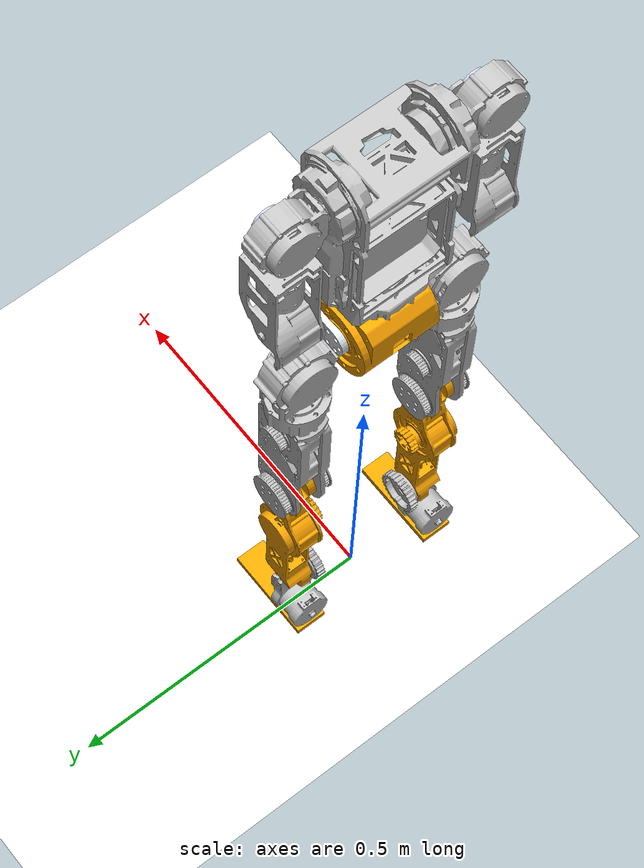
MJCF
<mujoco model="E1_v2">
  <compiler angle="radian" meshdir="../meshes/" autolimits="true"/>

  <default>
    <default class="E1">

        <!-- visual -->
        <!-- contype="0" 和 conaffinity="0" 表示该几何体不会与任何物体碰撞（包括地面） -->
        <default class="visual">
            <geom group="2" type="mesh" contype="0" conaffinity="0" rgba="0.3 0.3 0.3 1"/>
        </default>

        <default class="collision">
            <geom group="3" mass="0" density="0" rgba="0.7 0.7 0.7 1"/>
        </default>

    </default>
  </default>

  <asset>
    <texture type="skybox" builtin="gradient" rgb1="1 1 1" rgb2="1 1 1" width="800" height="800"/>
    <texture type="2d" name="groundplane" builtin="checker" mark="edge" rgb1="1 1 1" rgb2="1 1 1" markrgb="0 0 0" width="300" height="300"/>
    <material name="groundplane" texture="groundplane" texuniform="true" texrepeat="5 5" reflectance="0"/>
    <texture type="skybox" builtin="gradient" rgb1=".4 .5 .6" rgb2="0 0 0" width="100" height="100"/>
    <texture builtin="flat" height="1278" mark="cross" markrgb="1 1 1" name="texgeom" random="0.01" rgb1="0.8 0.6 0.4" rgb2="0.8 0.6 0.4" type="cube" width="127"/>
    <texture name="texplane" builtin="checker" height="512" width="512" rgb1=".2 .3 .4" rgb2=".1 .15 .2" type="2d" />
    <material name="MatPlane" reflectance="0.5" shininess="0.01" specular="0.1" texrepeat="1 1" texture="texplane" texuniform="true" />
    <material name="geom" texture="texgeom" texuniform="true"/>
  </asset>
  <worldbody>
    <geom name="floor" size="0 0 0.01" type="plane" material="groundplane" contype="1" conaffinity="0" priority="1" friction="0.6" condim="3"/>
    <light diffuse=".5 .5 .5" pos="-3 -3 5" dir="3 3 -5" castshadow="true"/>
  </worldbody>

  <asset>
    <mesh name="pelvis" file="pelvis.STL"/>
    <mesh name="left_hip_pitch_link" file="left_hip_pitch_link.STL"/>
    <mesh name="left_hip_roll_link" file="left_hip_roll_link.STL"/>
    <mesh name="left_hip_yaw_link" file="left_hip_yaw_link.STL"/>
    <mesh name="left_knee_link" file="left_knee_link.STL"/>
    <mesh name="left_ankle_pitch_link" file="left_ankle_pitch_link.STL"/>
    <mesh name="right_hip_pitch_link" file="right_hip_pitch_link.STL"/>
    <mesh name="right_hip_roll_link" file="right_hip_roll_link.STL"/>
    <mesh name="right_hip_yaw_link" file="right_hip_yaw_link.STL"/>
    <mesh name="right_knee_link" file="right_knee_link.STL"/>
    <mesh name="right_ankle_pitch_link" file="right_ankle_pitch_link.STL"/>
    <mesh name="torso_link" file="torso_link.STL"/>
    <mesh name="left_shoulder_pitch_link" file="left_shoulder_pitch_link.STL"/>
    <mesh name="left_shoulder_roll_link" file="left_shoulder_roll_link.STL"/>
    <mesh name="left_shoulder_yaw_link" file="left_shoulder_yaw_link.STL"/>
    <mesh name="left_elbow_link" file="left_elbow_link.STL"/>
    <mesh name="right_shoulder_pitch_link" file="right_shoulder_pitch_link.STL"/>
    <mesh name="right_shoulder_roll_link" file="right_shoulder_roll_link.STL"/>
    <mesh name="right_shoulder_yaw_link" file="right_shoulder_yaw_link.STL"/>
    <mesh name="right_elbow_link" file="right_elbow_link.STL"/>
    <mesh name="head_link" file="head_link.STL"/>
  </asset>

  <worldbody>
    <body name="pelvis" pos="0 0 0.73">
      <freejoint name="base_free_joint"/>
      <inertial pos="0.002 0 0.07" mass="2.95" quat="0.99 0 0.11 0" diaginertia="0.009 0.008 0.007"/>
      <geom class="visual" type="mesh" contype="0" conaffinity="0" group="1" density="0" rgba="1 0.64706 0 1" mesh="pelvis"/>
      <geom class="collision" size="0.05 0.05 0.05" pos="0 0 0.07" type="box" rgba="1 0.64706 0 1"/>

      <site name="imu_sensor" size="0.01" pos="0 0 0.1"/>

      <body name="left_hip_pitch_link" pos="0 0.057 0.065">
        <inertial pos="0.020044 0.0301526 -0.00422561" quat="0.627234 0.686462 0.353637 -0.101436" mass="0.18" diaginertia="0.000177793 0.000150738 5.17688e-05"/>
        <joint name="left_hip_pitch_joint" pos="0 0 0" axis="0 1 0" range="-2.7053 2.7053" actuatorfrcrange="-60 60"/>
        <geom class="visual" type="mesh" contype="0" conaffinity="0" group="1" density="0" rgba="0.89804 0.91765 0.92941 1" mesh="left_hip_pitch_link"/>

        <body name="left_hip_roll_link" pos="0 0.065 -0.013057">
          <inertial pos="-0.00068638 -5.009e-05 -0.0357735" quat="0.999944 0.00308008 0.00965317 -0.00314352" mass="1.665" diaginertia="0.00409391 0.00387212 0.00178131"/>
          <joint name="left_hip_roll_joint" pos="0 0 0" axis="1 0 0" range="-0.5236 3.1416" actuatorfrcrange="-60 60"/>
          <geom class="visual" type="mesh" contype="0" conaffinity="0" group="1" density="0" rgba="0.75294 0.75294 0.75294 1" mesh="left_hip_roll_link"/>

          <body name="left_hip_yaw_link" pos="0 0 -0.106">
            <inertial pos="0.00068457 -7.417e-05 -0.123295" quat="0.704428 0.0135549 0.00294679 0.70964" mass="2.055" diaginertia="0.0141754 0.0138037 0.00232509"/>
            <joint name="left_hip_yaw_joint" pos="0 0 0" axis="0 0 1" range="-2.0944 2.0944" actuatorfrcrange="-36 36"/>
            <geom class="visual" type="mesh" contype="0" conaffinity="0" group="1" density="0" rgba="0.75294 0.75294 0.75294 1" mesh="left_hip_yaw_link"/>

            <body name="left_knee_link" pos="0 0 -0.228">
              <inertial pos="0.00371192 -0.00097881 -0.156429" quat="0.714688 0.000482624 -0.00500608 0.699426" mass="1.4" diaginertia="0.0153519 0.0151967 0.000832227"/>
              <joint name="left_knee_joint" pos="0 0 0" axis="0 1 0" range="0 2.2689" actuatorfrcrange="-59.3 59.3"/>
              <geom class="visual" type="mesh" contype="0" conaffinity="0" group="1" density="0" rgba="1 0.64706 0 1" mesh="left_knee_link"/>
              <geom class="collision" size="0.015 0.015 0.13" pos="0 0 -0.16" type="box" rgba="1 0.64706 0 1"/>

              <body name="left_ankle_pitch_link" pos="0 0 -0.32">
                <inertial pos="-0.0109096 -0.00574639 -0.0370866" quat="0.440961 -0.20841 0.0425785 0.871955" mass="0.785" diaginertia="0.00124346 0.00101122 0.000536033"/>
                <joint name="left_ankle_pitch_joint" pos="0 0 0" axis="0 1 0" range="-0.5236 0.5236" actuatorfrcrange="-59.3 59.3"/>
                <geom class="visual" type="mesh" contype="0" conaffinity="0" group="1" density="0" rgba="0.75294 0.75294 0.75294 1" mesh="left_ankle_pitch_link"/>

                <body name="left_ankle_roll_link" pos="0 0 -0.06">
                  <inertial pos="0.0123494 -6.993e-05 -0.0320654" quat="-0.000493007 0.69858 -0.00216045 0.715529" mass="0.275" diaginertia="0.000792703 0.000716452 0.000128165"/>
                  <joint name="left_ankle_roll_joint" pos="0 0 0" axis="1 0 0" range="-1.5708 1.5708" actuatorfrcrange="-14 14"/>
                  <geom class="collision" size="0.075 0.025 0.005" pos="0.02 0 -0.04" type="box" contype="0" conaffinity="0" group="1" density="0" rgba="1 0.64706 0 1"/>
                  <geom class="collision" size="0.075 0.025 0.005" pos="0.02 0 -0.04" type="box" rgba="1 0.64706 0 1"/>
                  <geom class="collision" size="0.005" pos="0.107 0.035 -0.045" rgba="1 0.64706 0 1"/>
                  <geom class="collision" size="0.005" pos="0.107 -0.035 -0.045" rgba="1 0.64706 0 1"/>
                  <geom class="collision" size="0.005" pos="-0.073 0.035 -0.045" rgba="1 0.64706 0 1"/>
                  <geom class="collision" size="0.005" pos="-0.073 -0.035 -0.045" rgba="1 0.64706 0 1"/>
                </body>
              </body>
            </body>
          </body>
        </body>
      </body>
      <body name="right_hip_pitch_link" pos="0 -0.057 0.065">
        <inertial pos="0.020044 -0.0301526 -0.00422561" quat="0.686462 0.627234 0.101436 -0.353637" mass="0.18" diaginertia="0.000177793 0.000150738 5.17688e-05"/>
        <joint name="right_hip_pitch_joint" pos="0 0 0" axis="0 1 0" range="-2.7053 2.7053" actuatorfrcrange="-60 60"/>
        <geom class="visual" type="mesh" contype="0" conaffinity="0" group="1" density="0" rgba="0.79216 0.81961 0.93333 1" mesh="right_hip_pitch_link"/>

        <body name="right_hip_roll_link" pos="0 -0.065 -0.013057">
          <inertial pos="-0.00068634 5.01e-05 -0.0357735" quat="0.999947 -0.00313967 0.00963826 -0.00195039" mass="1.665" diaginertia="0.00409389 0.00387212 0.00178131"/>
          <joint name="right_hip_roll_joint" pos="0 0 0" axis="1 0 0" range="-3.1416 0.5236" actuatorfrcrange="-60 60"/>
          <geom class="visual" type="mesh" contype="0" conaffinity="0" group="1" density="0" rgba="0.75294 0.75294 0.75294 1" mesh="right_hip_roll_link"/>

          <body name="right_hip_yaw_link" pos="0 0 -0.106">
            <inertial pos="0.00068454 7.42e-05 -0.123295" quat="0.70964 0.0029471 0.0135552 0.704428" mass="2.0055" diaginertia="0.0141754 0.0138037 0.00232509"/>
            <joint name="right_hip_yaw_joint" pos="0 0 0" axis="0 0 1" range="-2.0944 2.0944" actuatorfrcrange="-36 36"/>
            <geom class="visual" type="mesh" contype="0" conaffinity="0" group="1" density="0" rgba="0.75294 0.75294 0.75294 1" mesh="right_hip_yaw_link"/>

            <body name="right_knee_link" pos="0 0 -0.228">
              <inertial pos="0.00371191 0.0009788 -0.156429" quat="0.699426 -0.00500584 0.000482867 0.714687" mass="1.4" diaginertia="0.0153519 0.0151967 0.000832227"/>
              <joint name="right_knee_joint" pos="0 0 0" axis="0 1 0" range="0 2.2689" actuatorfrcrange="-59.3 59.3"/>
              <geom class="visual" type="mesh" contype="0" conaffinity="0" group="1" density="0" rgba="1 0.64706 0 1" mesh="right_knee_link"/>
              <geom class="collision" size="0.015 0.015 0.13" pos="0 0 -0.16" type="box" rgba="1 0.64706 0 1"/>

              <body name="right_ankle_pitch_link" pos="0 0 -0.32">
                <inertial pos="-0.0109096 0.00574639 -0.0370867" quat="0.871955 0.0425785 -0.20841 0.440961" mass="0.785" diaginertia="0.00124346 0.00101122 0.000536033"/>
                <joint name="right_ankle_pitch_joint" pos="0 0 0" axis="0 1 0" range="-0.5236 0.5236" actuatorfrcrange="-59.3 59.3"/>
                <geom class="visual" type="mesh" contype="0" conaffinity="0" group="1" density="0" rgba="0.75294 0.75294 0.75294 1" mesh="right_ankle_pitch_link"/>

                <body name="right_ankle_roll_link" pos="0 0 -0.06">
                  <inertial pos="0.0123494 6.993e-05 -0.0320654" quat="0.000493007 0.69858 0.00216045 0.715529" mass="0.275" diaginertia="0.000792703 0.000716452 0.000128165"/>
                  <joint name="right_ankle_roll_joint" pos="0 0 0" axis="1 0 0" range="-1.5708 1.5708" actuatorfrcrange="-14 14"/>
                  <geom class="collision" size="0.075 0.025 0.005" pos="0.02 0 -0.04" type="box" contype="0" conaffinity="0" group="1" density="0" rgba="1 0.64706 0 1"/>
                  <geom class="collision" size="0.075 0.025 0.005" pos="0.02 0 -0.04" type="box" rgba="1 0.64706 0 1"/>
                  <geom class="collision" size="0.005" pos="0.107 0.035 -0.045" rgba="1 0.64706 0 1"/>
                  <geom class="collision" size="0.005" pos="0.107 -0.035 -0.045" rgba="1 0.64706 0 1"/>
                  <geom class="collision" size="0.005" pos="-0.073 0.035 -0.045" rgba="1 0.64706 0 1"/>
                  <geom class="collision" size="0.005" pos="-0.073 -0.035 -0.045" rgba="1 0.64706 0 1"/>
                </body>
              </body>
            </body>
          </body>
        </body>
      </body>
      <body name="torso_link" pos="0 0 0.135">
        <inertial pos="0.017486 -0.000240881 0.19779" quat="0.997775 -0.00132427 0.0666636 0.000196271" mass="8.2" diaginertia="0.150933 0.137221 0.026895"/>
        <joint name="waist_yaw_joint" pos="0 0 0" axis="0 0 1" range="-1.5708 1.5708" actuatorfrcrange="-60 60"/>
        <geom class="visual" type="mesh" contype="0" conaffinity="0" group="1" density="0" rgba="0.75294 0.75294 0.75294 1" mesh="torso_link"/>
        <geom class="collision" size="0.055 0.075 0.13" pos="0 0 0.17" type="box" rgba="0.75294 0.75294 0.75294 1"/>

        <body name="left_shoulder_pitch_link" pos="0 0.0985 0.28">
          <inertial pos="-0.0029314 0.041987 -2.95e-06" quat="0.706745 0.706919 -0.0197448 -0.0196724" mass="0.7" diaginertia="0.000833414 0.00069977 0.000500536"/>
          <joint name="left_shoulder_pitch_joint" pos="0 0 0" axis="0 1 0" range="-1.0472 2.7925" actuatorfrcrange="-36 36"/>
          <geom class="visual" type="mesh" contype="0" conaffinity="0" group="1" density="0" rgba="0.75294 0.75294 0.75294 1" mesh="left_shoulder_pitch_link"/>

          <body name="left_shoulder_roll_link" pos="0 0.052 0">
            <inertial pos="0.017782 0 -0.0289723" quat="0.988463 0 -0.151464 0" mass="0.15" diaginertia="0.000100297 9.367e-05 3.51927e-05"/>
            <joint name="left_shoulder_roll_joint" pos="0 0 0" axis="1 0 0" range="-0.1745 2.9671" actuatorfrcrange="-36 36"/>
            <geom class="visual" type="mesh" contype="0" conaffinity="0" group="1" density="0" rgba="0.79216 0.81961 0.93333 1" mesh="left_shoulder_roll_link"/>

            <body name="left_shoulder_yaw_link" pos="0 0 -0.057">
              <inertial pos="-0.00319289 -9.4e-05 -0.0885952" quat="0.968587 0.0147306 -0.0241296 -0.247062" mass="1.4" diaginertia="0.00581143 0.00568508 0.00128079"/>
              <joint name="left_shoulder_yaw_joint" pos="0 0 0" axis="0 0 1" range="-2.618 2.618" actuatorfrcrange="-14 14"/>
              <geom class="visual" type="mesh" contype="0" conaffinity="0" group="1" density="0" rgba="0.75294 0.75294 0.75294 1" mesh="left_shoulder_yaw_link"/>

            </body>
          </body>
        </body>
        <body name="right_shoulder_pitch_link" pos="0 -0.0985 0.28">
          <inertial pos="-0.0029314 -0.0422941 -0.00218097" quat="0.731807 0.680677 0.0160547 0.0296457" mass="0.7" diaginertia="0.000839004 0.00070504 0.000500036"/>
          <joint name="right_shoulder_pitch_joint" pos="0 0 0" axis="0 1 0" range="-1.0472 2.7925" actuatorfrcrange="-36 36"/>
          <geom class="visual" type="mesh" contype="0" conaffinity="0" group="1" density="0" rgba="0.75294 0.75294 0.75294 1" mesh="right_shoulder_pitch_link"/>

          <body name="right_shoulder_roll_link" pos="0 -0.051904 -0.0028082">
            <inertial pos="0.017782 0 -0.0289723" quat="0.988463 0 -0.151464 0" mass="0.15" diaginertia="0.000100297 9.367e-05 3.51927e-05"/>
            <joint name="right_shoulder_roll_joint" pos="0 0 0" axis="1 0 0" range="-2.9671 0.1745" actuatorfrcrange="-36 36"/>
            <geom class="visual" type="mesh" contype="0" conaffinity="0" group="1" density="0" rgba="0.79216 0.81961 0.93333 1" mesh="right_shoulder_roll_link"/>

            <body name="right_shoulder_yaw_link" pos="0 0 -0.057">
              <inertial pos="-0.00319289 -9.4e-05 -0.0885952" quat="0.964815 -0.000336881 0.0278801 0.261448" mass="1.4" diaginertia="0.0058179 0.00567841 0.00128099"/>
              <joint name="right_shoulder_yaw_joint" pos="0 0 0" axis="0 0 1" range="-2.618 2.618" actuatorfrcrange="-14 14"/>
              <geom class="visual" type="mesh" contype="0" conaffinity="0" group="1" density="0" rgba="0.75294 0.75294 0.75294 1" mesh="right_shoulder_yaw_link"/>

            </body>
          </body>
        </body>
      </body>

    </body>
  </worldbody>

  <actuator>
    <!-- left leg -->
    <motor name="left_hip_pitch" joint="left_hip_pitch_joint"/>
    <motor name="left_hip_roll" joint="left_hip_roll_joint"/>
    <motor name="left_hip_yaw" joint="left_hip_yaw_joint"/>
    <motor name="left_knee" joint="left_knee_joint"/>
    <motor name="left_ankle_roll" joint="left_ankle_roll_joint"/>
    <motor name="left_ankle_pitch" joint="left_ankle_pitch_joint"/>

    <!-- right leg -->
    <motor name="right_hip_pitch" joint="right_hip_pitch_joint"/>
    <motor name="right_hip_roll" joint="right_hip_roll_joint"/>
    <motor name="right_hip_yaw" joint="right_hip_yaw_joint"/>
    <motor name="right_knee" joint="right_knee_joint"/>
    <motor name="right_ankle_roll" joint="right_ankle_roll_joint"/>
    <motor name="right_ankle_pitch" joint="right_ankle_pitch_joint"/>

    <!-- waist -->
    <motor name="torso" joint="waist_yaw_joint"/>

    <!-- left arm -->
    <motor name="left_shoulder_pitch" joint="left_shoulder_pitch_joint"/>
    <motor name="left_shoulder_roll" joint="left_shoulder_roll_joint"/>
    <motor name="left_shoulder_yaw" joint="left_shoulder_yaw_joint"/>

    <!-- right arm -->
    <motor name="right_shoulder_pitch" joint="right_shoulder_pitch_joint"/>
    <motor name="right_shoulder_roll" joint="right_shoulder_roll_joint"/>
    <motor name="right_shoulder_yaw" joint="right_shoulder_yaw_joint"/>

</actuator>

<sensor>
  <jointpos name="left_hip_pitch_pos" joint="left_hip_pitch_joint"/>
  <jointpos name="left_hip_roll_pos" joint="left_hip_roll_joint"/>
  <jointpos name="left_hip_yaw_pos" joint="left_hip_yaw_joint"/>
  <jointpos name="left_knee_pos" joint="left_knee_joint"/>
  <jointpos name="left_ankle_pitch_pos" joint="left_ankle_pitch_joint"/>
  <jointpos name="left_ankle_roll_pos" joint="left_ankle_roll_joint"/>
  <jointpos name="right_hip_pitch_pos" joint="right_hip_pitch_joint"/>
  <jointpos name="right_hip_roll_pos" joint="right_hip_roll_joint"/>
  <jointpos name="right_hip_yaw_pos" joint="right_hip_yaw_joint"/>
  <jointpos name="right_knee_pos" joint="right_knee_joint"/>
  <jointpos name="right_ankle_pitch_pos" joint="right_ankle_pitch_joint"/>
  <jointpos name="right_ankle_roll_pos" joint="right_ankle_roll_joint"/>
  <jointpos name="waist_yaw_pos" joint="waist_yaw_joint"/>
  <jointpos name="left_shoulder_pitch_pos" joint="left_shoulder_pitch_joint"/>
  <jointpos name="left_shoulder_roll_pos" joint="left_shoulder_roll_joint"/>
  <jointpos name="left_shoulder_yaw_pos" joint="left_shoulder_yaw_joint"/>
  <jointpos name="right_shoulder_pitch_pos" joint="right_shoulder_pitch_joint"/>
  <jointpos name="right_shoulder_roll_pos" joint="right_shoulder_roll_joint"/>
  <jointpos name="right_shoulder_yaw_pos" joint="right_shoulder_yaw_joint"/>

  <jointvel name="left_hip_pitch_vel" joint="left_hip_pitch_joint"/>
  <jointvel name="left_hip_roll_vel" joint="left_hip_roll_joint"/>
  <jointvel name="left_hip_yaw_vel" joint="left_hip_yaw_joint"/>
  <jointvel name="left_knee_vel" joint="left_knee_joint"/>
  <jointvel name="left_ankle_pitch_vel" joint="left_ankle_pitch_joint"/>
  <jointvel name="left_ankle_roll_vel" joint="left_ankle_roll_joint"/>
  <jointvel name="right_hip_pitch_vel" joint="right_hip_pitch_joint"/>
  <jointvel name="right_hip_roll_vel" joint="right_hip_roll_joint"/>
  <jointvel name="right_hip_yaw_vel" joint="right_hip_yaw_joint"/>
  <jointvel name="right_knee_vel" joint="right_knee_joint"/>
  <jointvel name="right_ankle_pitch_vel" joint="right_ankle_pitch_joint"/>
  <jointvel name="right_ankle_roll_vel" joint="right_ankle_roll_joint"/>
  <jointvel name="waist_yaw_vel" joint="waist_yaw_joint"/>
  <jointvel name="left_shoulder_pitch_vel" joint="left_shoulder_pitch_joint"/>
  <jointvel name="left_shoulder_roll_vel" joint="left_shoulder_roll_joint"/>
  <jointvel name="left_shoulder_yaw_vel" joint="left_shoulder_yaw_joint"/>
  <jointvel name="right_shoulder_pitch_vel" joint="right_shoulder_pitch_joint"/>
  <jointvel name="right_shoulder_roll_vel" joint="right_shoulder_roll_joint"/>
  <jointvel name="right_shoulder_yaw_vel" joint="right_shoulder_yaw_joint"/>

  <actuatorfrc name="left_hip_pitch_torque" actuator="left_hip_pitch"/>
  <actuatorfrc name="left_hip_roll_torque" actuator="left_hip_roll"/>
  <actuatorfrc name="left_hip_yaw_torque" actuator="left_hip_yaw"/>
  <actuatorfrc name="left_knee_torque" actuator="left_knee"/>
  <actuatorfrc name="left_ankle_pitch_torque" actuator="left_ankle_pitch"/>
  <actuatorfrc name="left_ankle_roll_torque" actuator="left_ankle_roll"/>
  <actuatorfrc name="right_hip_pitch_torque" actuator="right_hip_pitch"/>
  <actuatorfrc name="right_hip_roll_torque" actuator="right_hip_roll"/>
  <actuatorfrc name="right_hip_yaw_torque" actuator="right_hip_yaw"/>
  <actuatorfrc name="right_knee_torque" actuator="right_knee"/>
  <actuatorfrc name="right_ankle_pitch_torque" actuator="right_ankle_pitch"/>
  <actuatorfrc name="right_ankle_roll_torque" actuator="right_ankle_roll"/>
  <actuatorfrc name="waist_yaw_torque" actuator="torso"/>
  <actuatorfrc name="left_shoulder_pitch_torque" actuator="left_shoulder_pitch"/>
  <actuatorfrc name="left_shoulder_roll_torque" actuator="left_shoulder_roll"/>
  <actuatorfrc name="left_shoulder_yaw_torque" actuator="left_shoulder_yaw"/>
  <actuatorfrc name="right_shoulder_pitch_torque" actuator="right_shoulder_pitch"/>
  <actuatorfrc name="right_shoulder_roll_torque" actuator="right_shoulder_roll"/>
  <actuatorfrc name="right_shoulder_yaw_torque" actuator="right_shoulder_yaw"/>

  <framequat name='orientation' objtype='site' objname='imu_sensor'/>
  <framepos name='position' objtype='site' noise='0.001' objname='imu_sensor'/>
  <gyro name='angular-velocity' site='imu_sensor' cutoff='34.9'/>
  <accelerometer name='linear-acceleration' site='imu_sensor' cutoff='157'/>
</sensor>

</mujoco>
